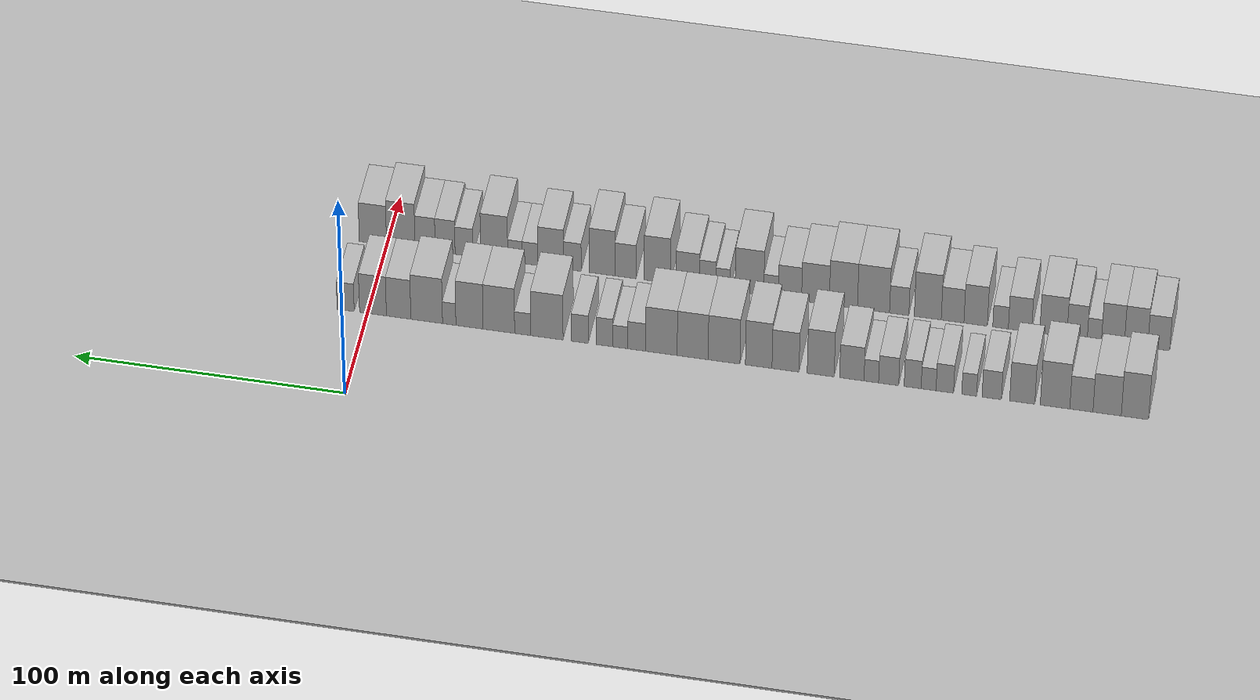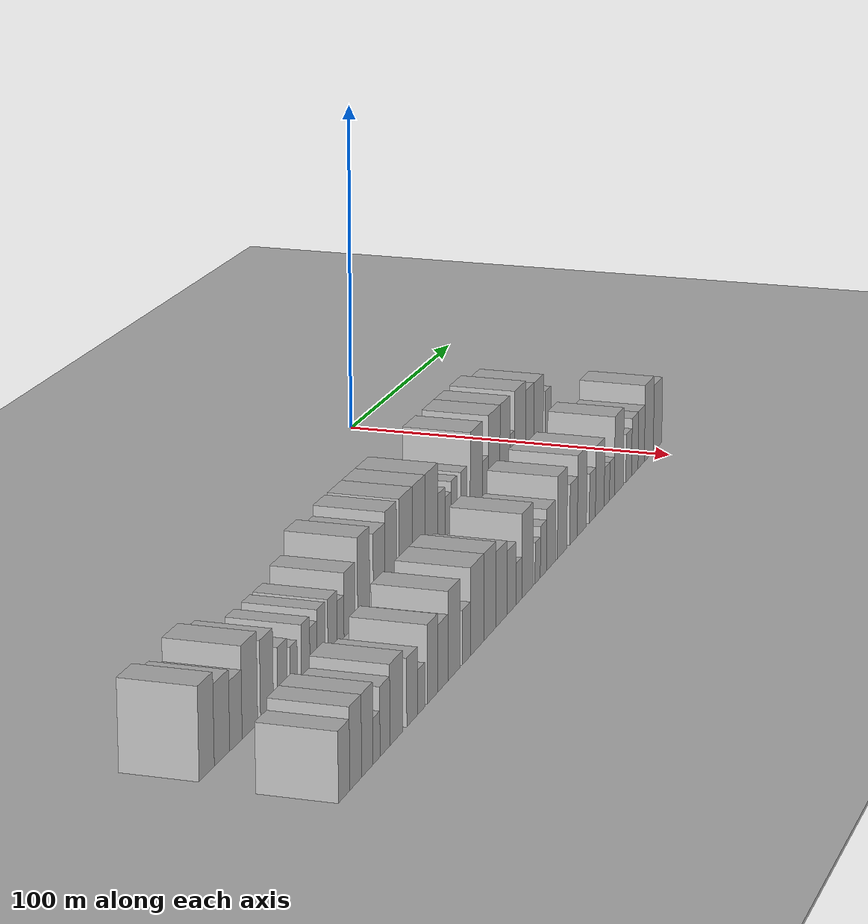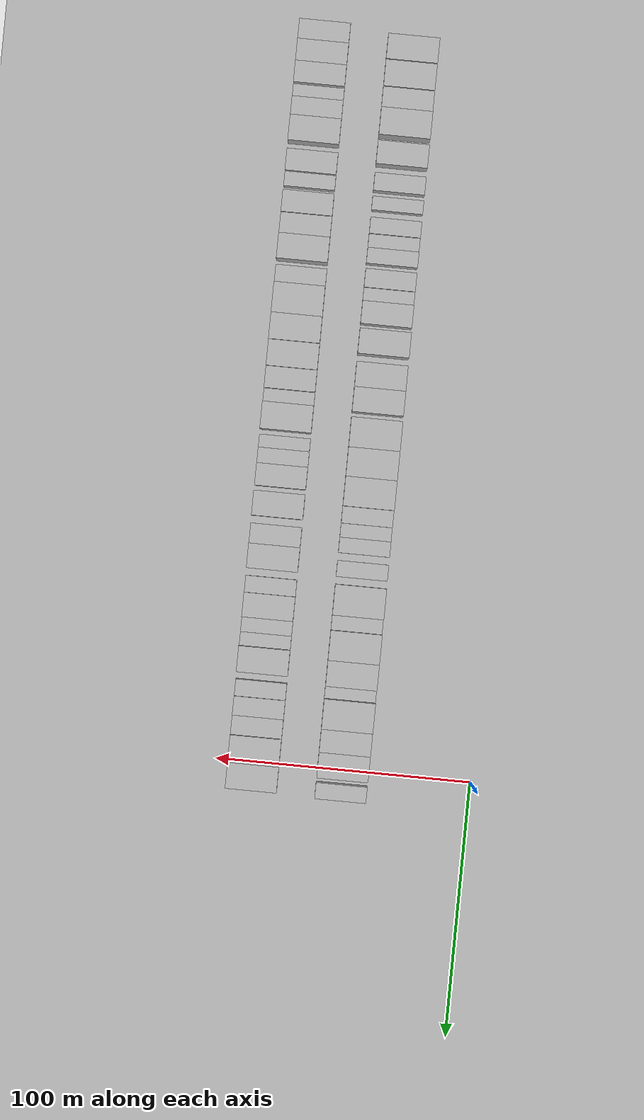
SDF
<sdf version="1.6">
 <world name="default">
  <include><name>ground_plane_1</name><uri>model://HANNAS_ground_plane</uri></include>
  <include>
   <name>ground_plane_2</name>
   <uri>model://HANNAS_ground_plane</uri>
   <pose>100 0 0  0 0 0</pose>
  </include>
  <model name="building_1">
   <static>1</static>
   <pose>50.0000 -282.0513 0 0.000000 0.000000 0.000000</pose>
   <link name="link">
    <pose>0 0 12.00 0 0 0</pose>
    <collision name="collision"><geometry><box><size>20.0000 9.8974 24.0000</size></box></geometry></collision>
    <visual name="visual">
     <cast_shadows>0</cast_shadows>
     <geometry><box><size>20.0000 9.8974 24.0000</size></box></geometry>
     <material>
      <script>
       <uri>model://HANNAS_wall/materials/scripts</uri>
       <uri>model://HANNAS_wall/materials/textures</uri>
       <name>vrc/HANNAS_wall</name>
      </script>
     </material>
    </visual>
   </link>
  </model>
  <model name="building_2">
   <static>1</static>
   <pose>50.0000 -271.9613 0 0.000000 0.000000 0.000000</pose>
   <link name="link">
    <pose>0 0 10.50 0 0 0</pose>
    <collision name="collision"><geometry><box><size>20.0000 10.2826 21.0000</size></box></geometry></collision>
    <visual name="visual">
     <cast_shadows>0</cast_shadows>
     <geometry><box><size>20.0000 10.2826 21.0000</size></box></geometry>
     <material>
      <script>
       <uri>model://HANNAS_wall/materials/scripts</uri>
       <uri>model://HANNAS_wall/materials/textures</uri>
       <name>vrc/HANNAS_wall</name>
      </script>
     </material>
    </visual>
   </link>
  </model>
  <model name="building_3">
   <static>1</static>
   <pose>50.0000 -262.6088 0 0.000000 0.000000 0.000000</pose>
   <link name="link">
    <pose>0 0 9.00 0 0 0</pose>
    <collision name="collision"><geometry><box><size>20.0000 8.4224 18.0000</size></box></geometry></collision>
    <visual name="visual">
     <cast_shadows>0</cast_shadows>
     <geometry><box><size>20.0000 8.4224 18.0000</size></box></geometry>
     <material>
      <script>
       <uri>model://HANNAS_wall/materials/scripts</uri>
       <uri>model://HANNAS_wall/materials/textures</uri>
       <name>vrc/HANNAS_wall</name>
      </script>
     </material>
    </visual>
   </link>
  </model>
  <model name="building_4">
   <static>1</static>
   <pose>50.0000 -253.0250 0 0.000000 0.000000 0.000000</pose>
   <link name="link">
    <pose>0 0 12.00 0 0 0</pose>
    <collision name="collision"><geometry><box><size>20.0000 10.7451 24.0000</size></box></geometry></collision>
    <visual name="visual">
     <cast_shadows>0</cast_shadows>
     <geometry><box><size>20.0000 10.7451 24.0000</size></box></geometry>
     <material>
      <script>
       <uri>model://HANNAS_wall/materials/scripts</uri>
       <uri>model://HANNAS_wall/materials/textures</uri>
       <name>vrc/HANNAS_wall</name>
      </script>
     </material>
    </visual>
   </link>
  </model>
  <model name="building_5">
   <static>1</static>
   <pose>50.0000 -241.0742 0 0.000000 0.000000 0.000000</pose>
   <link name="link">
    <pose>0 0 10.50 0 0 0</pose>
    <collision name="collision"><geometry><box><size>20.0000 9.1565 21.0000</size></box></geometry></collision>
    <visual name="visual">
     <cast_shadows>0</cast_shadows>
     <geometry><box><size>20.0000 9.1565 21.0000</size></box></geometry>
     <material>
      <script>
       <uri>model://HANNAS_wall/materials/scripts</uri>
       <uri>model://HANNAS_wall/materials/textures</uri>
       <name>vrc/HANNAS_wall</name>
      </script>
     </material>
    </visual>
   </link>
  </model>
  <model name="building_6">
   <static>1</static>
   <pose>50.0000 -229.9674 0 0.000000 0.000000 0.000000</pose>
   <link name="link">
    <pose>0 0 7.50 0 0 0</pose>
    <collision name="collision"><geometry><box><size>20.0000 7.0570 15.0000</size></box></geometry></collision>
    <visual name="visual">
     <cast_shadows>0</cast_shadows>
     <geometry><box><size>20.0000 7.0570 15.0000</size></box></geometry>
     <material>
      <script>
       <uri>model://HANNAS_wall/materials/scripts</uri>
       <uri>model://HANNAS_wall/materials/textures</uri>
       <name>vrc/HANNAS_wall</name>
      </script>
     </material>
    </visual>
   </link>
  </model>
  <model name="building_7">
   <static>1</static>
   <pose>50.0000 -221.7282 0 0.000000 0.000000 0.000000</pose>
   <link name="link">
    <pose>0 0 6.00 0 0 0</pose>
    <collision name="collision"><geometry><box><size>20.0000 5.4213 12.0000</size></box></geometry></collision>
    <visual name="visual">
     <cast_shadows>0</cast_shadows>
     <geometry><box><size>20.0000 5.4213 12.0000</size></box></geometry>
     <material>
      <script>
       <uri>model://HANNAS_wall/materials/scripts</uri>
       <uri>model://HANNAS_wall/materials/textures</uri>
       <name>vrc/HANNAS_wall</name>
      </script>
     </material>
    </visual>
   </link>
  </model>
  <model name="building_8">
   <static>1</static>
   <pose>50.0000 -212.8251 0 0.000000 0.000000 0.000000</pose>
   <link name="link">
    <pose>0 0 7.50 0 0 0</pose>
    <collision name="collision"><geometry><box><size>20.0000 6.3849 15.0000</size></box></geometry></collision>
    <visual name="visual">
     <cast_shadows>0</cast_shadows>
     <geometry><box><size>20.0000 6.3849 15.0000</size></box></geometry>
     <material>
      <script>
       <uri>model://HANNAS_wall/materials/scripts</uri>
       <uri>model://HANNAS_wall/materials/textures</uri>
       <name>vrc/HANNAS_wall</name>
      </script>
     </material>
    </visual>
   </link>
  </model>
  <model name="building_9">
   <static>1</static>
   <pose>50.0000 -206.9112 0 0.000000 0.000000 0.000000</pose>
   <link name="link">
    <pose>0 0 6.00 0 0 0</pose>
    <collision name="collision"><geometry><box><size>20.0000 5.4429 12.0000</size></box></geometry></collision>
    <visual name="visual">
     <cast_shadows>0</cast_shadows>
     <geometry><box><size>20.0000 5.4429 12.0000</size></box></geometry>
     <material>
      <script>
       <uri>model://HANNAS_wall/materials/scripts</uri>
       <uri>model://HANNAS_wall/materials/textures</uri>
       <name>vrc/HANNAS_wall</name>
      </script>
     </material>
    </visual>
   </link>
  </model>
  <model name="building_10">
   <static>1</static>
   <pose>50.0000 -201.0819 0 0.000000 0.000000 0.000000</pose>
   <link name="link">
    <pose>0 0 7.50 0 0 0</pose>
    <collision name="collision"><geometry><box><size>20.0000 6.2157 15.0000</size></box></geometry></collision>
    <visual name="visual">
     <cast_shadows>0</cast_shadows>
     <geometry><box><size>20.0000 6.2157 15.0000</size></box></geometry>
     <material>
      <script>
       <uri>model://HANNAS_wall/materials/scripts</uri>
       <uri>model://HANNAS_wall/materials/textures</uri>
       <name>vrc/HANNAS_wall</name>
      </script>
     </material>
    </visual>
   </link>
  </model>
  <model name="building_11">
   <static>1</static>
   <pose>50.0000 -192.2914 0 0.000000 0.000000 0.000000</pose>
   <link name="link">
    <pose>0 0 7.50 0 0 0</pose>
    <collision name="collision"><geometry><box><size>20.0000 7.3651 15.0000</size></box></geometry></collision>
    <visual name="visual">
     <cast_shadows>0</cast_shadows>
     <geometry><box><size>20.0000 7.3651 15.0000</size></box></geometry>
     <material>
      <script>
       <uri>model://HANNAS_wall/materials/scripts</uri>
       <uri>model://HANNAS_wall/materials/textures</uri>
       <name>vrc/HANNAS_wall</name>
      </script>
     </material>
    </visual>
   </link>
  </model>
  <model name="building_12">
   <static>1</static>
   <pose>50.0000 -185.9395 0 0.000000 0.000000 0.000000</pose>
   <link name="link">
    <pose>0 0 6.00 0 0 0</pose>
    <collision name="collision"><geometry><box><size>20.0000 5.3388 12.0000</size></box></geometry></collision>
    <visual name="visual">
     <cast_shadows>0</cast_shadows>
     <geometry><box><size>20.0000 5.3388 12.0000</size></box></geometry>
     <material>
      <script>
       <uri>model://HANNAS_wall/materials/scripts</uri>
       <uri>model://HANNAS_wall/materials/textures</uri>
       <name>vrc/HANNAS_wall</name>
      </script>
     </material>
    </visual>
   </link>
  </model>
  <model name="building_13">
   <static>1</static>
   <pose>50.0000 -178.7974 0 0.000000 0.000000 0.000000</pose>
   <link name="link">
    <pose>0 0 9.00 0 0 0</pose>
    <collision name="collision"><geometry><box><size>20.0000 8.9453 18.0000</size></box></geometry></collision>
    <visual name="visual">
     <cast_shadows>0</cast_shadows>
     <geometry><box><size>20.0000 8.9453 18.0000</size></box></geometry>
     <material>
      <script>
       <uri>model://HANNAS_wall/materials/scripts</uri>
       <uri>model://HANNAS_wall/materials/textures</uri>
       <name>vrc/HANNAS_wall</name>
      </script>
     </material>
    </visual>
   </link>
  </model>
  <model name="building_14">
   <static>1</static>
   <pose>50.0000 -167.3795 0 0.000000 0.000000 0.000000</pose>
   <link name="link">
    <pose>0 0 12.00 0 0 0</pose>
    <collision name="collision"><geometry><box><size>20.0000 9.8905 24.0000</size></box></geometry></collision>
    <visual name="visual">
     <cast_shadows>0</cast_shadows>
     <geometry><box><size>20.0000 9.8905 24.0000</size></box></geometry>
     <material>
      <script>
       <uri>model://HANNAS_wall/materials/scripts</uri>
       <uri>model://HANNAS_wall/materials/textures</uri>
       <name>vrc/HANNAS_wall</name>
      </script>
     </material>
    </visual>
   </link>
  </model>
  <model name="building_15">
   <static>1</static>
   <pose>50.0000 -154.4756 0 0.000000 0.000000 0.000000</pose>
   <link name="link">
    <pose>0 0 10.50 0 0 0</pose>
    <collision name="collision"><geometry><box><size>20.0000 9.9173 21.0000</size></box></geometry></collision>
    <visual name="visual">
     <cast_shadows>0</cast_shadows>
     <geometry><box><size>20.0000 9.9173 21.0000</size></box></geometry>
     <material>
      <script>
       <uri>model://HANNAS_wall/materials/scripts</uri>
       <uri>model://HANNAS_wall/materials/textures</uri>
       <name>vrc/HANNAS_wall</name>
      </script>
     </material>
    </visual>
   </link>
  </model>
  <model name="building_16">
   <static>1</static>
   <pose>50.0000 -144.6317 0 0.000000 0.000000 0.000000</pose>
   <link name="link">
    <pose>0 0 12.00 0 0 0</pose>
    <collision name="collision"><geometry><box><size>20.0000 9.7707 24.0000</size></box></geometry></collision>
    <visual name="visual">
     <cast_shadows>0</cast_shadows>
     <geometry><box><size>20.0000 9.7707 24.0000</size></box></geometry>
     <material>
      <script>
       <uri>model://HANNAS_wall/materials/scripts</uri>
       <uri>model://HANNAS_wall/materials/textures</uri>
       <name>vrc/HANNAS_wall</name>
      </script>
     </material>
    </visual>
   </link>
  </model>
  <model name="building_17">
   <static>1</static>
   <pose>50.0000 -131.8919 0 0.000000 0.000000 0.000000</pose>
   <link name="link">
    <pose>0 0 12.00 0 0 0</pose>
    <collision name="collision"><geometry><box><size>20.0000 11.7087 24.0000</size></box></geometry></collision>
    <visual name="visual">
     <cast_shadows>0</cast_shadows>
     <geometry><box><size>20.0000 11.7087 24.0000</size></box></geometry>
     <material>
      <script>
       <uri>model://HANNAS_wall/materials/scripts</uri>
       <uri>model://HANNAS_wall/materials/textures</uri>
       <name>vrc/HANNAS_wall</name>
      </script>
     </material>
    </visual>
   </link>
  </model>
  <model name="building_18">
   <static>1</static>
   <pose>50.0000 -120.3263 0 0.000000 0.000000 0.000000</pose>
   <link name="link">
    <pose>0 0 12.00 0 0 0</pose>
    <collision name="collision"><geometry><box><size>20.0000 11.4226 24.0000</size></box></geometry></collision>
    <visual name="visual">
     <cast_shadows>0</cast_shadows>
     <geometry><box><size>20.0000 11.4226 24.0000</size></box></geometry>
     <material>
      <script>
       <uri>model://HANNAS_wall/materials/scripts</uri>
       <uri>model://HANNAS_wall/materials/textures</uri>
       <name>vrc/HANNAS_wall</name>
      </script>
     </material>
    </visual>
   </link>
  </model>
  <model name="building_19">
   <static>1</static>
   <pose>50.0000 -108.8192 0 0.000000 0.000000 0.000000</pose>
   <link name="link">
    <pose>0 0 12.00 0 0 0</pose>
    <collision name="collision"><geometry><box><size>20.0000 11.5916 24.0000</size></box></geometry></collision>
    <visual name="visual">
     <cast_shadows>0</cast_shadows>
     <geometry><box><size>20.0000 11.5916 24.0000</size></box></geometry>
     <material>
      <script>
       <uri>model://HANNAS_wall/materials/scripts</uri>
       <uri>model://HANNAS_wall/materials/textures</uri>
       <name>vrc/HANNAS_wall</name>
      </script>
     </material>
    </visual>
   </link>
  </model>
  <model name="building_20">
   <static>1</static>
   <pose>50.0000 -99.7000 0 0.000000 0.000000 0.000000</pose>
   <link name="link">
    <pose>0 0 7.50 0 0 0</pose>
    <collision name="collision"><geometry><box><size>20.0000 6.6468 15.0000</size></box></geometry></collision>
    <visual name="visual">
     <cast_shadows>0</cast_shadows>
     <geometry><box><size>20.0000 6.6468 15.0000</size></box></geometry>
     <material>
      <script>
       <uri>model://HANNAS_wall/materials/scripts</uri>
       <uri>model://HANNAS_wall/materials/textures</uri>
       <name>vrc/HANNAS_wall</name>
      </script>
     </material>
    </visual>
   </link>
  </model>
  <model name="building_21">
   <static>1</static>
   <pose>50.0000 -93.6242 0 0.000000 0.000000 0.000000</pose>
   <link name="link">
    <pose>0 0 6.00 0 0 0</pose>
    <collision name="collision"><geometry><box><size>20.0000 5.5048 12.0000</size></box></geometry></collision>
    <visual name="visual">
     <cast_shadows>0</cast_shadows>
     <geometry><box><size>20.0000 5.5048 12.0000</size></box></geometry>
     <material>
      <script>
       <uri>model://HANNAS_wall/materials/scripts</uri>
       <uri>model://HANNAS_wall/materials/textures</uri>
       <name>vrc/HANNAS_wall</name>
      </script>
     </material>
    </visual>
   </link>
  </model>
  <model name="building_22">
   <static>1</static>
   <pose>50.0000 -87.8375 0 0.000000 0.000000 0.000000</pose>
   <link name="link">
    <pose>0 0 7.50 0 0 0</pose>
    <collision name="collision"><geometry><box><size>20.0000 6.0685 15.0000</size></box></geometry></collision>
    <visual name="visual">
     <cast_shadows>0</cast_shadows>
     <geometry><box><size>20.0000 6.0685 15.0000</size></box></geometry>
     <material>
      <script>
       <uri>model://HANNAS_wall/materials/scripts</uri>
       <uri>model://HANNAS_wall/materials/textures</uri>
       <name>vrc/HANNAS_wall</name>
      </script>
     </material>
    </visual>
   </link>
  </model>
  <model name="building_23">
   <static>1</static>
   <pose>50.0000 -78.6483 0 0.000000 0.000000 0.000000</pose>
   <link name="link">
    <pose>0 0 7.50 0 0 0</pose>
    <collision name="collision"><geometry><box><size>20.0000 6.3099 15.0000</size></box></geometry></collision>
    <visual name="visual">
     <cast_shadows>0</cast_shadows>
     <geometry><box><size>20.0000 6.3099 15.0000</size></box></geometry>
     <material>
      <script>
       <uri>model://HANNAS_wall/materials/scripts</uri>
       <uri>model://HANNAS_wall/materials/textures</uri>
       <name>vrc/HANNAS_wall</name>
      </script>
     </material>
    </visual>
   </link>
  </model>
  <model name="building_24">
   <static>1</static>
   <pose>50.0000 -66.4963 0 0.000000 0.000000 0.000000</pose>
   <link name="link">
    <pose>0 0 12.00 0 0 0</pose>
    <collision name="collision"><geometry><box><size>20.0000 11.9940 24.0000</size></box></geometry></collision>
    <visual name="visual">
     <cast_shadows>0</cast_shadows>
     <geometry><box><size>20.0000 11.9940 24.0000</size></box></geometry>
     <material>
      <script>
       <uri>model://HANNAS_wall/materials/scripts</uri>
       <uri>model://HANNAS_wall/materials/textures</uri>
       <name>vrc/HANNAS_wall</name>
      </script>
     </material>
    </visual>
   </link>
  </model>
  <model name="building_25">
   <static>1</static>
   <pose>50.0000 -57.5292 0 0.000000 0.000000 0.000000</pose>
   <link name="link">
    <pose>0 0 6.00 0 0 0</pose>
    <collision name="collision"><geometry><box><size>20.0000 5.9402 12.0000</size></box></geometry></collision>
    <visual name="visual">
     <cast_shadows>0</cast_shadows>
     <geometry><box><size>20.0000 5.9402 12.0000</size></box></geometry>
     <material>
      <script>
       <uri>model://HANNAS_wall/materials/scripts</uri>
       <uri>model://HANNAS_wall/materials/textures</uri>
       <name>vrc/HANNAS_wall</name>
      </script>
     </material>
    </visual>
   </link>
  </model>
  <model name="building_26">
   <static>1</static>
   <pose>50.0000 -48.7081 0 0.000000 0.000000 0.000000</pose>
   <link name="link">
    <pose>0 0 12.00 0 0 0</pose>
    <collision name="collision"><geometry><box><size>20.0000 11.7020 24.0000</size></box></geometry></collision>
    <visual name="visual">
     <cast_shadows>0</cast_shadows>
     <geometry><box><size>20.0000 11.7020 24.0000</size></box></geometry>
     <material>
      <script>
       <uri>model://HANNAS_wall/materials/scripts</uri>
       <uri>model://HANNAS_wall/materials/textures</uri>
       <name>vrc/HANNAS_wall</name>
      </script>
     </material>
    </visual>
   </link>
  </model>
  <model name="building_27">
   <static>1</static>
   <pose>50.0000 -37.8159 0 0.000000 0.000000 0.000000</pose>
   <link name="link">
    <pose>0 0 12.00 0 0 0</pose>
    <collision name="collision"><geometry><box><size>20.0000 10.0824 24.0000</size></box></geometry></collision>
    <visual name="visual">
     <cast_shadows>0</cast_shadows>
     <geometry><box><size>20.0000 10.0824 24.0000</size></box></geometry>
     <material>
      <script>
       <uri>model://HANNAS_wall/materials/scripts</uri>
       <uri>model://HANNAS_wall/materials/textures</uri>
       <name>vrc/HANNAS_wall</name>
      </script>
     </material>
    </visual>
   </link>
  </model>
  <model name="building_28">
   <static>1</static>
   <pose>50.0000 -30.2963 0 0.000000 0.000000 0.000000</pose>
   <link name="link">
    <pose>0 0 6.00 0 0 0</pose>
    <collision name="collision"><geometry><box><size>20.0000 4.9567 12.0000</size></box></geometry></collision>
    <visual name="visual">
     <cast_shadows>0</cast_shadows>
     <geometry><box><size>20.0000 4.9567 12.0000</size></box></geometry>
     <material>
      <script>
       <uri>model://HANNAS_wall/materials/scripts</uri>
       <uri>model://HANNAS_wall/materials/textures</uri>
       <name>vrc/HANNAS_wall</name>
      </script>
     </material>
    </visual>
   </link>
  </model>
  <model name="building_29">
   <static>1</static>
   <pose>50.0000 -21.9319 0 0.000000 0.000000 0.000000</pose>
   <link name="link">
    <pose>0 0 12.00 0 0 0</pose>
    <collision name="collision"><geometry><box><size>20.0000 11.7722 24.0000</size></box></geometry></collision>
    <visual name="visual">
     <cast_shadows>0</cast_shadows>
     <geometry><box><size>20.0000 11.7722 24.0000</size></box></geometry>
     <material>
      <script>
       <uri>model://HANNAS_wall/materials/scripts</uri>
       <uri>model://HANNAS_wall/materials/textures</uri>
       <name>vrc/HANNAS_wall</name>
      </script>
     </material>
    </visual>
   </link>
  </model>
  <model name="building_30">
   <static>1</static>
   <pose>50.0000 -11.4976 0 0.000000 0.000000 0.000000</pose>
   <link name="link">
    <pose>0 0 10.50 0 0 0</pose>
    <collision name="collision"><geometry><box><size>20.0000 9.0964 21.0000</size></box></geometry></collision>
    <visual name="visual">
     <cast_shadows>0</cast_shadows>
     <geometry><box><size>20.0000 9.0964 21.0000</size></box></geometry>
     <material>
      <script>
       <uri>model://HANNAS_wall/materials/scripts</uri>
       <uri>model://HANNAS_wall/materials/textures</uri>
       <name>vrc/HANNAS_wall</name>
      </script>
     </material>
    </visual>
   </link>
  </model>
  <model name="building_31">
   <static>1</static>
   <pose>50.0000 -1.9482 0 0.000000 0.000000 0.000000</pose>
   <link name="link">
    <pose>0 0 10.50 0 0 0</pose>
    <collision name="collision"><geometry><box><size>20.0000 10.0025 21.0000</size></box></geometry></collision>
    <visual name="visual">
     <cast_shadows>0</cast_shadows>
     <geometry><box><size>20.0000 10.0025 21.0000</size></box></geometry>
     <material>
      <script>
       <uri>model://HANNAS_wall/materials/scripts</uri>
       <uri>model://HANNAS_wall/materials/textures</uri>
       <name>vrc/HANNAS_wall</name>
      </script>
     </material>
    </visual>
   </link>
  </model>
  <model name="building_32">
   <static>1</static>
   <pose>50.0000 8.2210 0 0.000000 0.000000 0.000000</pose>
   <link name="link">
    <pose>0 0 7.50 0 0 0</pose>
    <collision name="collision"><geometry><box><size>20.0000 6.3358 15.0000</size></box></geometry></collision>
    <visual name="visual">
     <cast_shadows>0</cast_shadows>
     <geometry><box><size>20.0000 6.3358 15.0000</size></box></geometry>
     <material>
      <script>
       <uri>model://HANNAS_wall/materials/scripts</uri>
       <uri>model://HANNAS_wall/materials/textures</uri>
       <name>vrc/HANNAS_wall</name>
      </script>
     </material>
    </visual>
   </link>
  </model>
  <model name="building_67">
   <static>1</static>
   <pose>85.0000 -285.9767 0 0.000000 0.000000 0.000000</pose>
   <link name="link">
    <pose>0 0 9.00 0 0 0</pose>
    <collision name="collision"><geometry><box><size>20.0000 8.0466 18.0000</size></box></geometry></collision>
    <visual name="visual">
     <cast_shadows>0</cast_shadows>
     <geometry><box><size>20.0000 8.0466 18.0000</size></box></geometry>
     <material>
      <script>
       <uri>model://HANNAS_wall/materials/scripts</uri>
       <uri>model://HANNAS_wall/materials/textures</uri>
       <name>vrc/HANNAS_wall</name>
      </script>
     </material>
    </visual>
   </link>
  </model>
  <model name="building_68">
   <static>1</static>
   <pose>85.0000 -277.6850 0 0.000000 0.000000 0.000000</pose>
   <link name="link">
    <pose>0 0 10.50 0 0 0</pose>
    <collision name="collision"><geometry><box><size>20.0000 8.5369 21.0000</size></box></geometry></collision>
    <visual name="visual">
     <cast_shadows>0</cast_shadows>
     <geometry><box><size>20.0000 8.5369 21.0000</size></box></geometry>
     <material>
      <script>
       <uri>model://HANNAS_wall/materials/scripts</uri>
       <uri>model://HANNAS_wall/materials/textures</uri>
       <name>vrc/HANNAS_wall</name>
      </script>
     </material>
    </visual>
   </link>
  </model>
  <model name="building_69">
   <static>1</static>
   <pose>85.0000 -269.2075 0 0.000000 0.000000 0.000000</pose>
   <link name="link">
    <pose>0 0 10.50 0 0 0</pose>
    <collision name="collision"><geometry><box><size>20.0000 8.4182 21.0000</size></box></geometry></collision>
    <visual name="visual">
     <cast_shadows>0</cast_shadows>
     <geometry><box><size>20.0000 8.4182 21.0000</size></box></geometry>
     <material>
      <script>
       <uri>model://HANNAS_wall/materials/scripts</uri>
       <uri>model://HANNAS_wall/materials/textures</uri>
       <name>vrc/HANNAS_wall</name>
      </script>
     </material>
    </visual>
   </link>
  </model>
  <model name="building_70">
   <static>1</static>
   <pose>85.0000 -262.4025 0 0.000000 0.000000 0.000000</pose>
   <link name="link">
    <pose>0 0 6.00 0 0 0</pose>
    <collision name="collision"><geometry><box><size>20.0000 5.1918 12.0000</size></box></geometry></collision>
    <visual name="visual">
     <cast_shadows>0</cast_shadows>
     <geometry><box><size>20.0000 5.1918 12.0000</size></box></geometry>
     <material>
      <script>
       <uri>model://HANNAS_wall/materials/scripts</uri>
       <uri>model://HANNAS_wall/materials/textures</uri>
       <name>vrc/HANNAS_wall</name>
      </script>
     </material>
    </visual>
   </link>
  </model>
  <model name="building_71">
   <static>1</static>
   <pose>85.0000 -256.0858 0 0.000000 0.000000 0.000000</pose>
   <link name="link">
    <pose>0 0 9.00 0 0 0</pose>
    <collision name="collision"><geometry><box><size>20.0000 7.4415 18.0000</size></box></geometry></collision>
    <visual name="visual">
     <cast_shadows>0</cast_shadows>
     <geometry><box><size>20.0000 7.4415 18.0000</size></box></geometry>
     <material>
      <script>
       <uri>model://HANNAS_wall/materials/scripts</uri>
       <uri>model://HANNAS_wall/materials/textures</uri>
       <name>vrc/HANNAS_wall</name>
      </script>
     </material>
    </visual>
   </link>
  </model>
  <model name="building_72">
   <static>1</static>
   <pose>85.0000 -247.3697 0 0.000000 0.000000 0.000000</pose>
   <link name="link">
    <pose>0 0 10.50 0 0 0</pose>
    <collision name="collision"><geometry><box><size>20.0000 9.9908 21.0000</size></box></geometry></collision>
    <visual name="visual">
     <cast_shadows>0</cast_shadows>
     <geometry><box><size>20.0000 9.9908 21.0000</size></box></geometry>
     <material>
      <script>
       <uri>model://HANNAS_wall/materials/scripts</uri>
       <uri>model://HANNAS_wall/materials/textures</uri>
       <name>vrc/HANNAS_wall</name>
      </script>
     </material>
    </visual>
   </link>
  </model>
  <model name="building_73">
   <static>1</static>
   <pose>85.0000 -235.1004 0 0.000000 0.000000 0.000000</pose>
   <link name="link">
    <pose>0 0 9.00 0 0 0</pose>
    <collision name="collision"><geometry><box><size>20.0000 8.5479 18.0000</size></box></geometry></collision>
    <visual name="visual">
     <cast_shadows>0</cast_shadows>
     <geometry><box><size>20.0000 8.5479 18.0000</size></box></geometry>
     <material>
      <script>
       <uri>model://HANNAS_wall/materials/scripts</uri>
       <uri>model://HANNAS_wall/materials/textures</uri>
       <name>vrc/HANNAS_wall</name>
      </script>
     </material>
    </visual>
   </link>
  </model>
  <model name="building_74">
   <static>1</static>
   <pose>85.0000 -227.9590 0 0.000000 0.000000 0.000000</pose>
   <link name="link">
    <pose>0 0 6.00 0 0 0</pose>
    <collision name="collision"><geometry><box><size>20.0000 5.7348 12.0000</size></box></geometry></collision>
    <visual name="visual">
     <cast_shadows>0</cast_shadows>
     <geometry><box><size>20.0000 5.7348 12.0000</size></box></geometry>
     <material>
      <script>
       <uri>model://HANNAS_wall/materials/scripts</uri>
       <uri>model://HANNAS_wall/materials/textures</uri>
       <name>vrc/HANNAS_wall</name>
      </script>
     </material>
    </visual>
   </link>
  </model>
  <model name="building_75">
   <static>1</static>
   <pose>85.0000 -218.7840 0 0.000000 0.000000 0.000000</pose>
   <link name="link">
    <pose>0 0 10.50 0 0 0</pose>
    <collision name="collision"><geometry><box><size>20.0000 8.6153 21.0000</size></box></geometry></collision>
    <visual name="visual">
     <cast_shadows>0</cast_shadows>
     <geometry><box><size>20.0000 8.6153 21.0000</size></box></geometry>
     <material>
      <script>
       <uri>model://HANNAS_wall/materials/scripts</uri>
       <uri>model://HANNAS_wall/materials/textures</uri>
       <name>vrc/HANNAS_wall</name>
      </script>
     </material>
    </visual>
   </link>
  </model>
  <model name="building_76">
   <static>1</static>
   <pose>85.0000 -210.2934 0 0.000000 0.000000 0.000000</pose>
   <link name="link">
    <pose>0 0 9.00 0 0 0</pose>
    <collision name="collision"><geometry><box><size>20.0000 8.3659 18.0000</size></box></geometry></collision>
    <visual name="visual">
     <cast_shadows>0</cast_shadows>
     <geometry><box><size>20.0000 8.3659 18.0000</size></box></geometry>
     <material>
      <script>
       <uri>model://HANNAS_wall/materials/scripts</uri>
       <uri>model://HANNAS_wall/materials/textures</uri>
       <name>vrc/HANNAS_wall</name>
      </script>
     </material>
    </visual>
   </link>
  </model>
  <model name="building_77">
   <static>1</static>
   <pose>85.0000 -201.1464 0 0.000000 0.000000 0.000000</pose>
   <link name="link">
    <pose>0 0 12.00 0 0 0</pose>
    <collision name="collision"><geometry><box><size>20.0000 9.9280 24.0000</size></box></geometry></collision>
    <visual name="visual">
     <cast_shadows>0</cast_shadows>
     <geometry><box><size>20.0000 9.9280 24.0000</size></box></geometry>
     <material>
      <script>
       <uri>model://HANNAS_wall/materials/scripts</uri>
       <uri>model://HANNAS_wall/materials/textures</uri>
       <name>vrc/HANNAS_wall</name>
      </script>
     </material>
    </visual>
   </link>
  </model>
  <model name="building_78">
   <static>1</static>
   <pose>85.0000 -190.6140 0 0.000000 0.000000 0.000000</pose>
   <link name="link">
    <pose>0 0 7.50 0 0 0</pose>
    <collision name="collision"><geometry><box><size>20.0000 7.1370 15.0000</size></box></geometry></collision>
    <visual name="visual">
     <cast_shadows>0</cast_shadows>
     <geometry><box><size>20.0000 7.1370 15.0000</size></box></geometry>
     <material>
      <script>
       <uri>model://HANNAS_wall/materials/scripts</uri>
       <uri>model://HANNAS_wall/materials/textures</uri>
       <name>vrc/HANNAS_wall</name>
      </script>
     </material>
    </visual>
   </link>
  </model>
  <model name="building_79">
   <static>1</static>
   <pose>85.0000 -181.1077 0 0.000000 0.000000 0.000000</pose>
   <link name="link">
    <pose>0 0 12.00 0 0 0</pose>
    <collision name="collision"><geometry><box><size>20.0000 11.8755 24.0000</size></box></geometry></collision>
    <visual name="visual">
     <cast_shadows>0</cast_shadows>
     <geometry><box><size>20.0000 11.8755 24.0000</size></box></geometry>
     <material>
      <script>
       <uri>model://HANNAS_wall/materials/scripts</uri>
       <uri>model://HANNAS_wall/materials/textures</uri>
       <name>vrc/HANNAS_wall</name>
      </script>
     </material>
    </visual>
   </link>
  </model>
  <model name="building_80">
   <static>1</static>
   <pose>85.0000 -169.9712 0 0.000000 0.000000 0.000000</pose>
   <link name="link">
    <pose>0 0 12.00 0 0 0</pose>
    <collision name="collision"><geometry><box><size>20.0000 10.3976 24.0000</size></box></geometry></collision>
    <visual name="visual">
     <cast_shadows>0</cast_shadows>
     <geometry><box><size>20.0000 10.3976 24.0000</size></box></geometry>
     <material>
      <script>
       <uri>model://HANNAS_wall/materials/scripts</uri>
       <uri>model://HANNAS_wall/materials/textures</uri>
       <name>vrc/HANNAS_wall</name>
      </script>
     </material>
    </visual>
   </link>
  </model>
  <model name="building_81">
   <static>1</static>
   <pose>85.0000 -159.6417 0 0.000000 0.000000 0.000000</pose>
   <link name="link">
    <pose>0 0 10.50 0 0 0</pose>
    <collision name="collision"><geometry><box><size>20.0000 10.2614 21.0000</size></box></geometry></collision>
    <visual name="visual">
     <cast_shadows>0</cast_shadows>
     <geometry><box><size>20.0000 10.2614 21.0000</size></box></geometry>
     <material>
      <script>
       <uri>model://HANNAS_wall/materials/scripts</uri>
       <uri>model://HANNAS_wall/materials/textures</uri>
       <name>vrc/HANNAS_wall</name>
      </script>
     </material>
    </visual>
   </link>
  </model>
  <model name="building_82">
   <static>1</static>
   <pose>85.0000 -150.2096 0 0.000000 0.000000 0.000000</pose>
   <link name="link">
    <pose>0 0 9.00 0 0 0</pose>
    <collision name="collision"><geometry><box><size>20.0000 8.6027 18.0000</size></box></geometry></collision>
    <visual name="visual">
     <cast_shadows>0</cast_shadows>
     <geometry><box><size>20.0000 8.6027 18.0000</size></box></geometry>
     <material>
      <script>
       <uri>model://HANNAS_wall/materials/scripts</uri>
       <uri>model://HANNAS_wall/materials/textures</uri>
       <name>vrc/HANNAS_wall</name>
      </script>
     </material>
    </visual>
   </link>
  </model>
  <model name="building_83">
   <static>1</static>
   <pose>85.0000 -143.2013 0 0.000000 0.000000 0.000000</pose>
   <link name="link">
    <pose>0 0 6.00 0 0 0</pose>
    <collision name="collision"><geometry><box><size>20.0000 5.4139 12.0000</size></box></geometry></collision>
    <visual name="visual">
     <cast_shadows>0</cast_shadows>
     <geometry><box><size>20.0000 5.4139 12.0000</size></box></geometry>
     <material>
      <script>
       <uri>model://HANNAS_wall/materials/scripts</uri>
       <uri>model://HANNAS_wall/materials/textures</uri>
       <name>vrc/HANNAS_wall</name>
      </script>
     </material>
    </visual>
   </link>
  </model>
  <model name="building_84">
   <static>1</static>
   <pose>85.0000 -135.1801 0 0.000000 0.000000 0.000000</pose>
   <link name="link">
    <pose>0 0 12.00 0 0 0</pose>
    <collision name="collision"><geometry><box><size>20.0000 10.6285 24.0000</size></box></geometry></collision>
    <visual name="visual">
     <cast_shadows>0</cast_shadows>
     <geometry><box><size>20.0000 10.6285 24.0000</size></box></geometry>
     <material>
      <script>
       <uri>model://HANNAS_wall/materials/scripts</uri>
       <uri>model://HANNAS_wall/materials/textures</uri>
       <name>vrc/HANNAS_wall</name>
      </script>
     </material>
    </visual>
   </link>
  </model>
  <model name="building_85">
   <static>1</static>
   <pose>85.0000 -125.3020 0 0.000000 0.000000 0.000000</pose>
   <link name="link">
    <pose>0 0 6.00 0 0 0</pose>
    <collision name="collision"><geometry><box><size>20.0000 5.1276 12.0000</size></box></geometry></collision>
    <visual name="visual">
     <cast_shadows>0</cast_shadows>
     <geometry><box><size>20.0000 5.1276 12.0000</size></box></geometry>
     <material>
      <script>
       <uri>model://HANNAS_wall/materials/scripts</uri>
       <uri>model://HANNAS_wall/materials/textures</uri>
       <name>vrc/HANNAS_wall</name>
      </script>
     </material>
    </visual>
   </link>
  </model>
  <model name="building_86">
   <static>1</static>
   <pose>85.0000 -119.6709 0 0.000000 0.000000 0.000000</pose>
   <link name="link">
    <pose>0 0 7.50 0 0 0</pose>
    <collision name="collision"><geometry><box><size>20.0000 6.1346 15.0000</size></box></geometry></collision>
    <visual name="visual">
     <cast_shadows>0</cast_shadows>
     <geometry><box><size>20.0000 6.1346 15.0000</size></box></geometry>
     <material>
      <script>
       <uri>model://HANNAS_wall/materials/scripts</uri>
       <uri>model://HANNAS_wall/materials/textures</uri>
       <name>vrc/HANNAS_wall</name>
      </script>
     </material>
    </visual>
   </link>
  </model>
  <model name="building_87">
   <static>1</static>
   <pose>85.0000 -112.2135 0 0.000000 0.000000 0.000000</pose>
   <link name="link">
    <pose>0 0 9.00 0 0 0</pose>
    <collision name="collision"><geometry><box><size>20.0000 8.7804 18.0000</size></box></geometry></collision>
    <visual name="visual">
     <cast_shadows>0</cast_shadows>
     <geometry><box><size>20.0000 8.7804 18.0000</size></box></geometry>
     <material>
      <script>
       <uri>model://HANNAS_wall/materials/scripts</uri>
       <uri>model://HANNAS_wall/materials/textures</uri>
       <name>vrc/HANNAS_wall</name>
      </script>
     </material>
    </visual>
   </link>
  </model>
  <model name="building_88">
   <static>1</static>
   <pose>85.0000 -100.9492 0 0.000000 0.000000 0.000000</pose>
   <link name="link">
    <pose>0 0 12.00 0 0 0</pose>
    <collision name="collision"><geometry><box><size>20.0000 9.7482 24.0000</size></box></geometry></collision>
    <visual name="visual">
     <cast_shadows>0</cast_shadows>
     <geometry><box><size>20.0000 9.7482 24.0000</size></box></geometry>
     <material>
      <script>
       <uri>model://HANNAS_wall/materials/scripts</uri>
       <uri>model://HANNAS_wall/materials/textures</uri>
       <name>vrc/HANNAS_wall</name>
      </script>
     </material>
    </visual>
   </link>
  </model>
  <model name="building_89">
   <static>1</static>
   <pose>85.0000 -89.1444 0 0.000000 0.000000 0.000000</pose>
   <link name="link">
    <pose>0 0 9.00 0 0 0</pose>
    <collision name="collision"><geometry><box><size>20.0000 7.8615 18.0000</size></box></geometry></collision>
    <visual name="visual">
     <cast_shadows>0</cast_shadows>
     <geometry><box><size>20.0000 7.8615 18.0000</size></box></geometry>
     <material>
      <script>
       <uri>model://HANNAS_wall/materials/scripts</uri>
       <uri>model://HANNAS_wall/materials/textures</uri>
       <name>vrc/HANNAS_wall</name>
      </script>
     </material>
    </visual>
   </link>
  </model>
  <model name="building_90">
   <static>1</static>
   <pose>85.0000 -80.4028 0 0.000000 0.000000 0.000000</pose>
   <link name="link">
    <pose>0 0 12.00 0 0 0</pose>
    <collision name="collision"><geometry><box><size>20.0000 9.6216 24.0000</size></box></geometry></collision>
    <visual name="visual">
     <cast_shadows>0</cast_shadows>
     <geometry><box><size>20.0000 9.6216 24.0000</size></box></geometry>
     <material>
      <script>
       <uri>model://HANNAS_wall/materials/scripts</uri>
       <uri>model://HANNAS_wall/materials/textures</uri>
       <name>vrc/HANNAS_wall</name>
      </script>
     </material>
    </visual>
   </link>
  </model>
  <model name="building_91">
   <static>1</static>
   <pose>85.0000 -69.3002 0 0.000000 0.000000 0.000000</pose>
   <link name="link">
    <pose>0 0 7.50 0 0 0</pose>
    <collision name="collision"><geometry><box><size>20.0000 6.5836 15.0000</size></box></geometry></collision>
    <visual name="visual">
     <cast_shadows>0</cast_shadows>
     <geometry><box><size>20.0000 6.5836 15.0000</size></box></geometry>
     <material>
      <script>
       <uri>model://HANNAS_wall/materials/scripts</uri>
       <uri>model://HANNAS_wall/materials/textures</uri>
       <name>vrc/HANNAS_wall</name>
      </script>
     </material>
    </visual>
   </link>
  </model>
  <model name="building_92">
   <static>1</static>
   <pose>85.0000 -61.2214 0 0.000000 0.000000 0.000000</pose>
   <link name="link">
    <pose>0 0 10.50 0 0 0</pose>
    <collision name="collision"><geometry><box><size>20.0000 9.5740 21.0000</size></box></geometry></collision>
    <visual name="visual">
     <cast_shadows>0</cast_shadows>
     <geometry><box><size>20.0000 9.5740 21.0000</size></box></geometry>
     <material>
      <script>
       <uri>model://HANNAS_wall/materials/scripts</uri>
       <uri>model://HANNAS_wall/materials/textures</uri>
       <name>vrc/HANNAS_wall</name>
      </script>
     </material>
    </visual>
   </link>
  </model>
  <model name="building_93">
   <static>1</static>
   <pose>85.0000 -53.4921 0 0.000000 0.000000 0.000000</pose>
   <link name="link">
    <pose>0 0 6.00 0 0 0</pose>
    <collision name="collision"><geometry><box><size>20.0000 5.8845 12.0000</size></box></geometry></collision>
    <visual name="visual">
     <cast_shadows>0</cast_shadows>
     <geometry><box><size>20.0000 5.8845 12.0000</size></box></geometry>
     <material>
      <script>
       <uri>model://HANNAS_wall/materials/scripts</uri>
       <uri>model://HANNAS_wall/materials/textures</uri>
       <name>vrc/HANNAS_wall</name>
      </script>
     </material>
    </visual>
   </link>
  </model>
  <model name="building_94">
   <static>1</static>
   <pose>85.0000 -47.8696 0 0.000000 0.000000 0.000000</pose>
   <link name="link">
    <pose>0 0 6.00 0 0 0</pose>
    <collision name="collision"><geometry><box><size>20.0000 5.3606 12.0000</size></box></geometry></collision>
    <visual name="visual">
     <cast_shadows>0</cast_shadows>
     <geometry><box><size>20.0000 5.3606 12.0000</size></box></geometry>
     <material>
      <script>
       <uri>model://HANNAS_wall/materials/scripts</uri>
       <uri>model://HANNAS_wall/materials/textures</uri>
       <name>vrc/HANNAS_wall</name>
      </script>
     </material>
    </visual>
   </link>
  </model>
  <model name="building_95">
   <static>1</static>
   <pose>85.0000 -40.1328 0 0.000000 0.000000 0.000000</pose>
   <link name="link">
    <pose>0 0 12.00 0 0 0</pose>
    <collision name="collision"><geometry><box><size>20.0000 10.1129 24.0000</size></box></geometry></collision>
    <visual name="visual">
     <cast_shadows>0</cast_shadows>
     <geometry><box><size>20.0000 10.1129 24.0000</size></box></geometry>
     <material>
      <script>
       <uri>model://HANNAS_wall/materials/scripts</uri>
       <uri>model://HANNAS_wall/materials/textures</uri>
       <name>vrc/HANNAS_wall</name>
      </script>
     </material>
    </visual>
   </link>
  </model>
  <model name="building_96">
   <static>1</static>
   <pose>85.0000 -28.7841 0 0.000000 0.000000 0.000000</pose>
   <link name="link">
    <pose>0 0 7.50 0 0 0</pose>
    <collision name="collision"><geometry><box><size>20.0000 6.5846 15.0000</size></box></geometry></collision>
    <visual name="visual">
     <cast_shadows>0</cast_shadows>
     <geometry><box><size>20.0000 6.5846 15.0000</size></box></geometry>
     <material>
      <script>
       <uri>model://HANNAS_wall/materials/scripts</uri>
       <uri>model://HANNAS_wall/materials/textures</uri>
       <name>vrc/HANNAS_wall</name>
      </script>
     </material>
    </visual>
   </link>
  </model>
  <model name="building_97">
   <static>1</static>
   <pose>85.0000 -21.7619 0 0.000000 0.000000 0.000000</pose>
   <link name="link">
    <pose>0 0 9.00 0 0 0</pose>
    <collision name="collision"><geometry><box><size>20.0000 7.4598 18.0000</size></box></geometry></collision>
    <visual name="visual">
     <cast_shadows>0</cast_shadows>
     <geometry><box><size>20.0000 7.4598 18.0000</size></box></geometry>
     <material>
      <script>
       <uri>model://HANNAS_wall/materials/scripts</uri>
       <uri>model://HANNAS_wall/materials/textures</uri>
       <name>vrc/HANNAS_wall</name>
      </script>
     </material>
    </visual>
   </link>
  </model>
  <model name="building_98">
   <static>1</static>
   <pose>85.0000 -14.2650 0 0.000000 0.000000 0.000000</pose>
   <link name="link">
    <pose>0 0 9.00 0 0 0</pose>
    <collision name="collision"><geometry><box><size>20.0000 7.5341 18.0000</size></box></geometry></collision>
    <visual name="visual">
     <cast_shadows>0</cast_shadows>
     <geometry><box><size>20.0000 7.5341 18.0000</size></box></geometry>
     <material>
      <script>
       <uri>model://HANNAS_wall/materials/scripts</uri>
       <uri>model://HANNAS_wall/materials/textures</uri>
       <name>vrc/HANNAS_wall</name>
      </script>
     </material>
    </visual>
   </link>
  </model>
  <model name="building_99">
   <static>1</static>
   <pose>85.0000 -5.1467 0 0.000000 0.000000 0.000000</pose>
   <link name="link">
    <pose>0 0 12.00 0 0 0</pose>
    <collision name="collision"><geometry><box><size>20.0000 10.7024 24.0000</size></box></geometry></collision>
    <visual name="visual">
     <cast_shadows>0</cast_shadows>
     <geometry><box><size>20.0000 10.7024 24.0000</size></box></geometry>
     <material>
      <script>
       <uri>model://HANNAS_wall/materials/scripts</uri>
       <uri>model://HANNAS_wall/materials/textures</uri>
       <name>vrc/HANNAS_wall</name>
      </script>
     </material>
    </visual>
   </link>
  </model>
  <model name="building_100">
   <static>1</static>
   <pose>85.0000 5.3156 0 0.000000 0.000000 0.000000</pose>
   <link name="link">
    <pose>0 0 10.50 0 0 0</pose>
    <collision name="collision"><geometry><box><size>20.0000 10.2223 21.0000</size></box></geometry></collision>
    <visual name="visual">
     <cast_shadows>0</cast_shadows>
     <geometry><box><size>20.0000 10.2223 21.0000</size></box></geometry>
     <material>
      <script>
       <uri>model://HANNAS_wall/materials/scripts</uri>
       <uri>model://HANNAS_wall/materials/textures</uri>
       <name>vrc/HANNAS_wall</name>
      </script>
     </material>
    </visual>
   </link>
  </model>
 </world>
</sdf>
